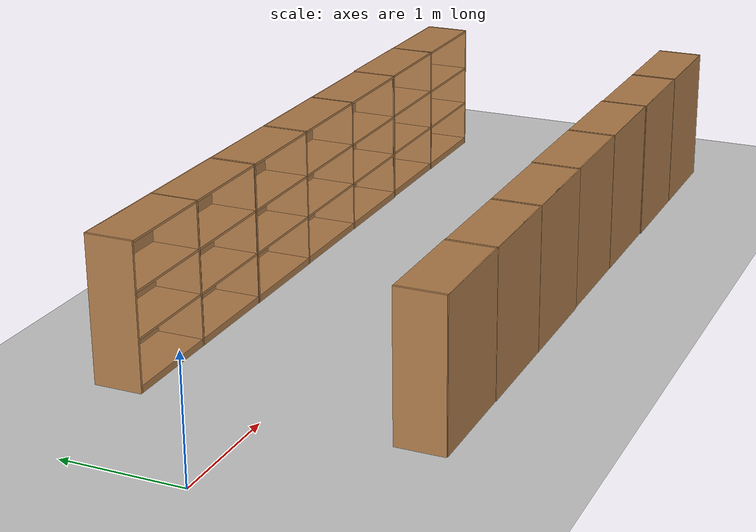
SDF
<sdf version="1.4">
 <world name="default">
  <light name="sun" type="directional">
   <pose>0 0 10 0 -0 0</pose>
   <diffuse>0.8 0.8 0.8 1</diffuse>
   <specular>0.2 0.2 0.2 1</specular>
   <attenuation>
    <range>1000</range>
    <constant>0.9</constant>
    <linear>0.01</linear>
    <quadratic>0.001</quadratic>
   </attenuation>
   <direction>-0.5 0.1 -0.9</direction>
  </light>
  <model name="ground_plane">
   <static>1</static>
   <link name="link">
    <collision name="collision">
     <geometry><plane><normal>0 0 1</normal><size>100 100</size></plane></geometry>
     <surface><friction><ode><mu>100</mu><mu2>50</mu2></ode></friction></surface>
    </collision>
    <visual name="visual">
     <cast_shadows>0</cast_shadows>
     <geometry><plane><normal>0 0 1</normal><size>100 100</size></plane></geometry>
     <material>
      <script><uri>file://media/materials/scripts/gazebo.material</uri><name>Gazebo/Grey</name></script>
     </material>
    </visual>
    <velocity_decay><linear>0</linear><angular>0</angular></velocity_decay>
   </link>
  </model>
  <physics type="ode">
   <max_step_size>0.001</max_step_size>
   <real_time_factor>1</real_time_factor>
   <real_time_update_rate>1000</real_time_update_rate>
   <gravity>0 0 -9.8</gravity>
  </physics>
  <scene><ambient>0.4 0.4 0.4 1</ambient><background>0.7 0.7 0.7 1</background><shadows>1</shadows></scene>
  <spherical_coordinates>
   <surface_model>EARTH_WGS84</surface_model>
   <latitude_deg>0</latitude_deg>
   <longitude_deg>0</longitude_deg>
   <elevation>0</elevation>
   <heading_deg>0</heading_deg>
  </spherical_coordinates>
  <model name="bookshelf">
   <static>1</static>
   <link name="link">
    <inertial><mass>1</mass></inertial>
    <collision name="back">
     <pose>0 0.005 0.6 0 -0 0</pose>
     <geometry><box><size>0.9 0.01 1.2</size></box></geometry>
    </collision>
    <visual name="visual1">
     <pose>0 0.005 0.6 0 -0 0</pose>
     <geometry><box><size>0.9 0.01 1.2</size></box></geometry>
     <material>
      <script><uri>file://media/materials/scripts/gazebo.material</uri><name>Gazebo/Wood</name></script>
     </material>
    </visual>
    <collision name="left_side">
     <pose>0.45 -0.195 0.6 0 -0 0</pose>
     <geometry><box><size>0.02 0.4 1.2</size></box></geometry>
    </collision>
    <visual name="visual2">
     <pose>0.45 -0.195 0.6 0 -0 0</pose>
     <geometry><box><size>0.02 0.4 1.2</size></box></geometry>
     <material>
      <script><uri>file://media/materials/scripts/gazebo.material</uri><name>Gazebo/Wood</name></script>
     </material>
    </visual>
    <collision name="right_side">
     <pose>-0.45 -0.195 0.6 0 -0 0</pose>
     <geometry><box><size>0.02 0.4 1.2</size></box></geometry>
    </collision>
    <visual name="visual3">
     <pose>-0.45 -0.195 0.6 0 -0 0</pose>
     <geometry><box><size>0.02 0.4 1.2</size></box></geometry>
     <material>
      <script><uri>file://media/materials/scripts/gazebo.material</uri><name>Gazebo/Wood</name></script>
     </material>
    </visual>
    <collision name="bottom">
     <pose>0 -0.195 0.03 0 -0 0</pose>
     <geometry><box><size>0.88 0.4 0.06</size></box></geometry>
    </collision>
    <visual name="visual4">
     <pose>0 -0.195 0.03 0 -0 0</pose>
     <geometry><box><size>0.88 0.4 0.06</size></box></geometry>
     <material>
      <script><uri>file://media/materials/scripts/gazebo.material</uri><name>Gazebo/Wood</name></script>
     </material>
    </visual>
    <collision name="top">
     <pose>0 -0.195 1.19 0 -0 0</pose>
     <geometry><box><size>0.88 0.4 0.02</size></box></geometry>
    </collision>
    <visual name="visual5">
     <pose>0 -0.195 1.19 0 -0 0</pose>
     <geometry><box><size>0.88 0.4 0.02</size></box></geometry>
     <material>
      <script><uri>file://media/materials/scripts/gazebo.material</uri><name>Gazebo/Wood</name></script>
     </material>
    </visual>
    <collision name="low_shelf">
     <pose>0 -0.195 0.43 0 -0 0</pose>
     <geometry><box><size>0.88 0.4 0.02</size></box></geometry>
    </collision>
    <visual name="visual6">
     <pose>0 -0.195 0.43 0 -0 0</pose>
     <geometry><box><size>0.88 0.4 0.02</size></box></geometry>
     <material>
      <script><uri>file://media/materials/scripts/gazebo.material</uri><name>Gazebo/Wood</name></script>
     </material>
    </visual>
    <collision name="high_shelf">
     <pose>0 -0.195 0.8 0 -0 0</pose>
     <geometry><box><size>0.88 0.4 0.02</size></box></geometry>
    </collision>
    <visual name="visual7">
     <pose>0 -0.195 0.8 0 -0 0</pose>
     <geometry><box><size>0.88 0.4 0.02</size></box></geometry>
     <material>
      <script><uri>file://media/materials/scripts/gazebo.material</uri><name>Gazebo/Wood</name></script>
     </material>
    </visual>
    <velocity_decay><linear>0</linear><angular>0</angular></velocity_decay>
   </link>
   <pose>1.51751 -1.39961 0 0 0 -3.14016</pose>
  </model>
  <model name="bookshelf_0">
   <static>1</static>
   <link name="link">
    <inertial><mass>1</mass></inertial>
    <collision name="back">
     <pose>0 0.005 0.6 0 -0 0</pose>
     <geometry><box><size>0.9 0.01 1.2</size></box></geometry>
    </collision>
    <visual name="visual1">
     <pose>0 0.005 0.6 0 -0 0</pose>
     <geometry><box><size>0.9 0.01 1.2</size></box></geometry>
     <material>
      <script><uri>file://media/materials/scripts/gazebo.material</uri><name>Gazebo/Wood</name></script>
     </material>
    </visual>
    <collision name="left_side">
     <pose>0.45 -0.195 0.6 0 -0 0</pose>
     <geometry><box><size>0.02 0.4 1.2</size></box></geometry>
    </collision>
    <visual name="visual2">
     <pose>0.45 -0.195 0.6 0 -0 0</pose>
     <geometry><box><size>0.02 0.4 1.2</size></box></geometry>
     <material>
      <script><uri>file://media/materials/scripts/gazebo.material</uri><name>Gazebo/Wood</name></script>
     </material>
    </visual>
    <collision name="right_side">
     <pose>-0.45 -0.195 0.6 0 -0 0</pose>
     <geometry><box><size>0.02 0.4 1.2</size></box></geometry>
    </collision>
    <visual name="visual3">
     <pose>-0.45 -0.195 0.6 0 -0 0</pose>
     <geometry><box><size>0.02 0.4 1.2</size></box></geometry>
     <material>
      <script><uri>file://media/materials/scripts/gazebo.material</uri><name>Gazebo/Wood</name></script>
     </material>
    </visual>
    <collision name="bottom">
     <pose>0 -0.195 0.03 0 -0 0</pose>
     <geometry><box><size>0.88 0.4 0.06</size></box></geometry>
    </collision>
    <visual name="visual4">
     <pose>0 -0.195 0.03 0 -0 0</pose>
     <geometry><box><size>0.88 0.4 0.06</size></box></geometry>
     <material>
      <script><uri>file://media/materials/scripts/gazebo.material</uri><name>Gazebo/Wood</name></script>
     </material>
    </visual>
    <collision name="top">
     <pose>0 -0.195 1.19 0 -0 0</pose>
     <geometry><box><size>0.88 0.4 0.02</size></box></geometry>
    </collision>
    <visual name="visual5">
     <pose>0 -0.195 1.19 0 -0 0</pose>
     <geometry><box><size>0.88 0.4 0.02</size></box></geometry>
     <material>
      <script><uri>file://media/materials/scripts/gazebo.material</uri><name>Gazebo/Wood</name></script>
     </material>
    </visual>
    <collision name="low_shelf">
     <pose>0 -0.195 0.43 0 -0 0</pose>
     <geometry><box><size>0.88 0.4 0.02</size></box></geometry>
    </collision>
    <visual name="visual6">
     <pose>0 -0.195 0.43 0 -0 0</pose>
     <geometry><box><size>0.88 0.4 0.02</size></box></geometry>
     <material>
      <script><uri>file://media/materials/scripts/gazebo.material</uri><name>Gazebo/Wood</name></script>
     </material>
    </visual>
    <collision name="high_shelf">
     <pose>0 -0.195 0.8 0 -0 0</pose>
     <geometry><box><size>0.88 0.4 0.02</size></box></geometry>
    </collision>
    <visual name="visual7">
     <pose>0 -0.195 0.8 0 -0 0</pose>
     <geometry><box><size>0.88 0.4 0.02</size></box></geometry>
     <material>
      <script><uri>file://media/materials/scripts/gazebo.material</uri><name>Gazebo/Wood</name></script>
     </material>
    </visual>
    <velocity_decay><linear>0</linear><angular>0</angular></velocity_decay>
   </link>
   <pose>1.52256 1.40238 0 0 -0 0</pose>
  </model>
  <model name="bookshelf_1">
   <static>1</static>
   <link name="link">
    <inertial><mass>1</mass></inertial>
    <collision name="back">
     <pose>0 0.005 0.6 0 -0 0</pose>
     <geometry><box><size>0.9 0.01 1.2</size></box></geometry>
    </collision>
    <visual name="visual1">
     <pose>0 0.005 0.6 0 -0 0</pose>
     <geometry><box><size>0.9 0.01 1.2</size></box></geometry>
     <material>
      <script><uri>file://media/materials/scripts/gazebo.material</uri><name>Gazebo/Wood</name></script>
     </material>
    </visual>
    <collision name="left_side">
     <pose>0.45 -0.195 0.6 0 -0 0</pose>
     <geometry><box><size>0.02 0.4 1.2</size></box></geometry>
    </collision>
    <visual name="visual2">
     <pose>0.45 -0.195 0.6 0 -0 0</pose>
     <geometry><box><size>0.02 0.4 1.2</size></box></geometry>
     <material>
      <script><uri>file://media/materials/scripts/gazebo.material</uri><name>Gazebo/Wood</name></script>
     </material>
    </visual>
    <collision name="right_side">
     <pose>-0.45 -0.195 0.6 0 -0 0</pose>
     <geometry><box><size>0.02 0.4 1.2</size></box></geometry>
    </collision>
    <visual name="visual3">
     <pose>-0.45 -0.195 0.6 0 -0 0</pose>
     <geometry><box><size>0.02 0.4 1.2</size></box></geometry>
     <material>
      <script><uri>file://media/materials/scripts/gazebo.material</uri><name>Gazebo/Wood</name></script>
     </material>
    </visual>
    <collision name="bottom">
     <pose>0 -0.195 0.03 0 -0 0</pose>
     <geometry><box><size>0.88 0.4 0.06</size></box></geometry>
    </collision>
    <visual name="visual4">
     <pose>0 -0.195 0.03 0 -0 0</pose>
     <geometry><box><size>0.88 0.4 0.06</size></box></geometry>
     <material>
      <script><uri>file://media/materials/scripts/gazebo.material</uri><name>Gazebo/Wood</name></script>
     </material>
    </visual>
    <collision name="top">
     <pose>0 -0.195 1.19 0 -0 0</pose>
     <geometry><box><size>0.88 0.4 0.02</size></box></geometry>
    </collision>
    <visual name="visual5">
     <pose>0 -0.195 1.19 0 -0 0</pose>
     <geometry><box><size>0.88 0.4 0.02</size></box></geometry>
     <material>
      <script><uri>file://media/materials/scripts/gazebo.material</uri><name>Gazebo/Wood</name></script>
     </material>
    </visual>
    <collision name="low_shelf">
     <pose>0 -0.195 0.43 0 -0 0</pose>
     <geometry><box><size>0.88 0.4 0.02</size></box></geometry>
    </collision>
    <visual name="visual6">
     <pose>0 -0.195 0.43 0 -0 0</pose>
     <geometry><box><size>0.88 0.4 0.02</size></box></geometry>
     <material>
      <script><uri>file://media/materials/scripts/gazebo.material</uri><name>Gazebo/Wood</name></script>
     </material>
    </visual>
    <collision name="high_shelf">
     <pose>0 -0.195 0.8 0 -0 0</pose>
     <geometry><box><size>0.88 0.4 0.02</size></box></geometry>
    </collision>
    <visual name="visual7">
     <pose>0 -0.195 0.8 0 -0 0</pose>
     <geometry><box><size>0.88 0.4 0.02</size></box></geometry>
     <material>
      <script><uri>file://media/materials/scripts/gazebo.material</uri><name>Gazebo/Wood</name></script>
     </material>
    </visual>
    <velocity_decay><linear>0</linear><angular>0</angular></velocity_decay>
   </link>
   <pose>2.41609 1.40118 0 0 -0 0</pose>
  </model>
  <model name="bookshelf_2">
   <static>1</static>
   <link name="link">
    <inertial><mass>1</mass></inertial>
    <collision name="back">
     <pose>0 0.005 0.6 0 -0 0</pose>
     <geometry><box><size>0.9 0.01 1.2</size></box></geometry>
    </collision>
    <visual name="visual1">
     <pose>0 0.005 0.6 0 -0 0</pose>
     <geometry><box><size>0.9 0.01 1.2</size></box></geometry>
     <material>
      <script><uri>file://media/materials/scripts/gazebo.material</uri><name>Gazebo/Wood</name></script>
     </material>
    </visual>
    <collision name="left_side">
     <pose>0.45 -0.195 0.6 0 -0 0</pose>
     <geometry><box><size>0.02 0.4 1.2</size></box></geometry>
    </collision>
    <visual name="visual2">
     <pose>0.45 -0.195 0.6 0 -0 0</pose>
     <geometry><box><size>0.02 0.4 1.2</size></box></geometry>
     <material>
      <script><uri>file://media/materials/scripts/gazebo.material</uri><name>Gazebo/Wood</name></script>
     </material>
    </visual>
    <collision name="right_side">
     <pose>-0.45 -0.195 0.6 0 -0 0</pose>
     <geometry><box><size>0.02 0.4 1.2</size></box></geometry>
    </collision>
    <visual name="visual3">
     <pose>-0.45 -0.195 0.6 0 -0 0</pose>
     <geometry><box><size>0.02 0.4 1.2</size></box></geometry>
     <material>
      <script><uri>file://media/materials/scripts/gazebo.material</uri><name>Gazebo/Wood</name></script>
     </material>
    </visual>
    <collision name="bottom">
     <pose>0 -0.195 0.03 0 -0 0</pose>
     <geometry><box><size>0.88 0.4 0.06</size></box></geometry>
    </collision>
    <visual name="visual4">
     <pose>0 -0.195 0.03 0 -0 0</pose>
     <geometry><box><size>0.88 0.4 0.06</size></box></geometry>
     <material>
      <script><uri>file://media/materials/scripts/gazebo.material</uri><name>Gazebo/Wood</name></script>
     </material>
    </visual>
    <collision name="top">
     <pose>0 -0.195 1.19 0 -0 0</pose>
     <geometry><box><size>0.88 0.4 0.02</size></box></geometry>
    </collision>
    <visual name="visual5">
     <pose>0 -0.195 1.19 0 -0 0</pose>
     <geometry><box><size>0.88 0.4 0.02</size></box></geometry>
     <material>
      <script><uri>file://media/materials/scripts/gazebo.material</uri><name>Gazebo/Wood</name></script>
     </material>
    </visual>
    <collision name="low_shelf">
     <pose>0 -0.195 0.43 0 -0 0</pose>
     <geometry><box><size>0.88 0.4 0.02</size></box></geometry>
    </collision>
    <visual name="visual6">
     <pose>0 -0.195 0.43 0 -0 0</pose>
     <geometry><box><size>0.88 0.4 0.02</size></box></geometry>
     <material>
      <script><uri>file://media/materials/scripts/gazebo.material</uri><name>Gazebo/Wood</name></script>
     </material>
    </visual>
    <collision name="high_shelf">
     <pose>0 -0.195 0.8 0 -0 0</pose>
     <geometry><box><size>0.88 0.4 0.02</size></box></geometry>
    </collision>
    <visual name="visual7">
     <pose>0 -0.195 0.8 0 -0 0</pose>
     <geometry><box><size>0.88 0.4 0.02</size></box></geometry>
     <material>
      <script><uri>file://media/materials/scripts/gazebo.material</uri><name>Gazebo/Wood</name></script>
     </material>
    </visual>
    <velocity_decay><linear>0</linear><angular>0</angular></velocity_decay>
   </link>
   <pose>2.42061 -1.40235 0 0 0 -3.14159</pose>
  </model>
  <model name="bookshelf_3">
   <static>1</static>
   <link name="link">
    <inertial><mass>1</mass></inertial>
    <collision name="back">
     <pose>0 0.005 0.6 0 -0 0</pose>
     <geometry><box><size>0.9 0.01 1.2</size></box></geometry>
    </collision>
    <visual name="visual1">
     <pose>0 0.005 0.6 0 -0 0</pose>
     <geometry><box><size>0.9 0.01 1.2</size></box></geometry>
     <material>
      <script><uri>file://media/materials/scripts/gazebo.material</uri><name>Gazebo/Wood</name></script>
     </material>
    </visual>
    <collision name="left_side">
     <pose>0.45 -0.195 0.6 0 -0 0</pose>
     <geometry><box><size>0.02 0.4 1.2</size></box></geometry>
    </collision>
    <visual name="visual2">
     <pose>0.45 -0.195 0.6 0 -0 0</pose>
     <geometry><box><size>0.02 0.4 1.2</size></box></geometry>
     <material>
      <script><uri>file://media/materials/scripts/gazebo.material</uri><name>Gazebo/Wood</name></script>
     </material>
    </visual>
    <collision name="right_side">
     <pose>-0.45 -0.195 0.6 0 -0 0</pose>
     <geometry><box><size>0.02 0.4 1.2</size></box></geometry>
    </collision>
    <visual name="visual3">
     <pose>-0.45 -0.195 0.6 0 -0 0</pose>
     <geometry><box><size>0.02 0.4 1.2</size></box></geometry>
     <material>
      <script><uri>file://media/materials/scripts/gazebo.material</uri><name>Gazebo/Wood</name></script>
     </material>
    </visual>
    <collision name="bottom">
     <pose>0 -0.195 0.03 0 -0 0</pose>
     <geometry><box><size>0.88 0.4 0.06</size></box></geometry>
    </collision>
    <visual name="visual4">
     <pose>0 -0.195 0.03 0 -0 0</pose>
     <geometry><box><size>0.88 0.4 0.06</size></box></geometry>
     <material>
      <script><uri>file://media/materials/scripts/gazebo.material</uri><name>Gazebo/Wood</name></script>
     </material>
    </visual>
    <collision name="top">
     <pose>0 -0.195 1.19 0 -0 0</pose>
     <geometry><box><size>0.88 0.4 0.02</size></box></geometry>
    </collision>
    <visual name="visual5">
     <pose>0 -0.195 1.19 0 -0 0</pose>
     <geometry><box><size>0.88 0.4 0.02</size></box></geometry>
     <material>
      <script><uri>file://media/materials/scripts/gazebo.material</uri><name>Gazebo/Wood</name></script>
     </material>
    </visual>
    <collision name="low_shelf">
     <pose>0 -0.195 0.43 0 -0 0</pose>
     <geometry><box><size>0.88 0.4 0.02</size></box></geometry>
    </collision>
    <visual name="visual6">
     <pose>0 -0.195 0.43 0 -0 0</pose>
     <geometry><box><size>0.88 0.4 0.02</size></box></geometry>
     <material>
      <script><uri>file://media/materials/scripts/gazebo.material</uri><name>Gazebo/Wood</name></script>
     </material>
    </visual>
    <collision name="high_shelf">
     <pose>0 -0.195 0.8 0 -0 0</pose>
     <geometry><box><size>0.88 0.4 0.02</size></box></geometry>
    </collision>
    <visual name="visual7">
     <pose>0 -0.195 0.8 0 -0 0</pose>
     <geometry><box><size>0.88 0.4 0.02</size></box></geometry>
     <material>
      <script><uri>file://media/materials/scripts/gazebo.material</uri><name>Gazebo/Wood</name></script>
     </material>
    </visual>
    <velocity_decay><linear>0</linear><angular>0</angular></velocity_decay>
   </link>
   <pose>3.32379 1.39912 0 0 -0 0</pose>
  </model>
  <model name="bookshelf_4">
   <static>1</static>
   <link name="link">
    <inertial><mass>1</mass></inertial>
    <collision name="back">
     <pose>0 0.005 0.6 0 -0 0</pose>
     <geometry><box><size>0.9 0.01 1.2</size></box></geometry>
    </collision>
    <visual name="visual1">
     <pose>0 0.005 0.6 0 -0 0</pose>
     <geometry><box><size>0.9 0.01 1.2</size></box></geometry>
     <material>
      <script><uri>file://media/materials/scripts/gazebo.material</uri><name>Gazebo/Wood</name></script>
     </material>
    </visual>
    <collision name="left_side">
     <pose>0.45 -0.195 0.6 0 -0 0</pose>
     <geometry><box><size>0.02 0.4 1.2</size></box></geometry>
    </collision>
    <visual name="visual2">
     <pose>0.45 -0.195 0.6 0 -0 0</pose>
     <geometry><box><size>0.02 0.4 1.2</size></box></geometry>
     <material>
      <script><uri>file://media/materials/scripts/gazebo.material</uri><name>Gazebo/Wood</name></script>
     </material>
    </visual>
    <collision name="right_side">
     <pose>-0.45 -0.195 0.6 0 -0 0</pose>
     <geometry><box><size>0.02 0.4 1.2</size></box></geometry>
    </collision>
    <visual name="visual3">
     <pose>-0.45 -0.195 0.6 0 -0 0</pose>
     <geometry><box><size>0.02 0.4 1.2</size></box></geometry>
     <material>
      <script><uri>file://media/materials/scripts/gazebo.material</uri><name>Gazebo/Wood</name></script>
     </material>
    </visual>
    <collision name="bottom">
     <pose>0 -0.195 0.03 0 -0 0</pose>
     <geometry><box><size>0.88 0.4 0.06</size></box></geometry>
    </collision>
    <visual name="visual4">
     <pose>0 -0.195 0.03 0 -0 0</pose>
     <geometry><box><size>0.88 0.4 0.06</size></box></geometry>
     <material>
      <script><uri>file://media/materials/scripts/gazebo.material</uri><name>Gazebo/Wood</name></script>
     </material>
    </visual>
    <collision name="top">
     <pose>0 -0.195 1.19 0 -0 0</pose>
     <geometry><box><size>0.88 0.4 0.02</size></box></geometry>
    </collision>
    <visual name="visual5">
     <pose>0 -0.195 1.19 0 -0 0</pose>
     <geometry><box><size>0.88 0.4 0.02</size></box></geometry>
     <material>
      <script><uri>file://media/materials/scripts/gazebo.material</uri><name>Gazebo/Wood</name></script>
     </material>
    </visual>
    <collision name="low_shelf">
     <pose>0 -0.195 0.43 0 -0 0</pose>
     <geometry><box><size>0.88 0.4 0.02</size></box></geometry>
    </collision>
    <visual name="visual6">
     <pose>0 -0.195 0.43 0 -0 0</pose>
     <geometry><box><size>0.88 0.4 0.02</size></box></geometry>
     <material>
      <script><uri>file://media/materials/scripts/gazebo.material</uri><name>Gazebo/Wood</name></script>
     </material>
    </visual>
    <collision name="high_shelf">
     <pose>0 -0.195 0.8 0 -0 0</pose>
     <geometry><box><size>0.88 0.4 0.02</size></box></geometry>
    </collision>
    <visual name="visual7">
     <pose>0 -0.195 0.8 0 -0 0</pose>
     <geometry><box><size>0.88 0.4 0.02</size></box></geometry>
     <material>
      <script><uri>file://media/materials/scripts/gazebo.material</uri><name>Gazebo/Wood</name></script>
     </material>
    </visual>
    <velocity_decay><linear>0</linear><angular>0</angular></velocity_decay>
   </link>
   <pose>4.22773 1.402 0 0 -0 0</pose>
  </model>
  <model name="bookshelf_5">
   <static>1</static>
   <link name="link">
    <inertial><mass>1</mass></inertial>
    <collision name="back">
     <pose>0 0.005 0.6 0 -0 0</pose>
     <geometry><box><size>0.9 0.01 1.2</size></box></geometry>
    </collision>
    <visual name="visual1">
     <pose>0 0.005 0.6 0 -0 0</pose>
     <geometry><box><size>0.9 0.01 1.2</size></box></geometry>
     <material>
      <script><uri>file://media/materials/scripts/gazebo.material</uri><name>Gazebo/Wood</name></script>
     </material>
    </visual>
    <collision name="left_side">
     <pose>0.45 -0.195 0.6 0 -0 0</pose>
     <geometry><box><size>0.02 0.4 1.2</size></box></geometry>
    </collision>
    <visual name="visual2">
     <pose>0.45 -0.195 0.6 0 -0 0</pose>
     <geometry><box><size>0.02 0.4 1.2</size></box></geometry>
     <material>
      <script><uri>file://media/materials/scripts/gazebo.material</uri><name>Gazebo/Wood</name></script>
     </material>
    </visual>
    <collision name="right_side">
     <pose>-0.45 -0.195 0.6 0 -0 0</pose>
     <geometry><box><size>0.02 0.4 1.2</size></box></geometry>
    </collision>
    <visual name="visual3">
     <pose>-0.45 -0.195 0.6 0 -0 0</pose>
     <geometry><box><size>0.02 0.4 1.2</size></box></geometry>
     <material>
      <script><uri>file://media/materials/scripts/gazebo.material</uri><name>Gazebo/Wood</name></script>
     </material>
    </visual>
    <collision name="bottom">
     <pose>0 -0.195 0.03 0 -0 0</pose>
     <geometry><box><size>0.88 0.4 0.06</size></box></geometry>
    </collision>
    <visual name="visual4">
     <pose>0 -0.195 0.03 0 -0 0</pose>
     <geometry><box><size>0.88 0.4 0.06</size></box></geometry>
     <material>
      <script><uri>file://media/materials/scripts/gazebo.material</uri><name>Gazebo/Wood</name></script>
     </material>
    </visual>
    <collision name="top">
     <pose>0 -0.195 1.19 0 -0 0</pose>
     <geometry><box><size>0.88 0.4 0.02</size></box></geometry>
    </collision>
    <visual name="visual5">
     <pose>0 -0.195 1.19 0 -0 0</pose>
     <geometry><box><size>0.88 0.4 0.02</size></box></geometry>
     <material>
      <script><uri>file://media/materials/scripts/gazebo.material</uri><name>Gazebo/Wood</name></script>
     </material>
    </visual>
    <collision name="low_shelf">
     <pose>0 -0.195 0.43 0 -0 0</pose>
     <geometry><box><size>0.88 0.4 0.02</size></box></geometry>
    </collision>
    <visual name="visual6">
     <pose>0 -0.195 0.43 0 -0 0</pose>
     <geometry><box><size>0.88 0.4 0.02</size></box></geometry>
     <material>
      <script><uri>file://media/materials/scripts/gazebo.material</uri><name>Gazebo/Wood</name></script>
     </material>
    </visual>
    <collision name="high_shelf">
     <pose>0 -0.195 0.8 0 -0 0</pose>
     <geometry><box><size>0.88 0.4 0.02</size></box></geometry>
    </collision>
    <visual name="visual7">
     <pose>0 -0.195 0.8 0 -0 0</pose>
     <geometry><box><size>0.88 0.4 0.02</size></box></geometry>
     <material>
      <script><uri>file://media/materials/scripts/gazebo.material</uri><name>Gazebo/Wood</name></script>
     </material>
    </visual>
    <velocity_decay><linear>0</linear><angular>0</angular></velocity_decay>
   </link>
   <pose>3.32726 -1.40237 0 0 0 -3.14159</pose>
  </model>
  <model name="bookshelf_6">
   <static>1</static>
   <link name="link">
    <inertial><mass>1</mass></inertial>
    <collision name="back">
     <pose>0 0.005 0.6 0 -0 0</pose>
     <geometry><box><size>0.9 0.01 1.2</size></box></geometry>
    </collision>
    <visual name="visual1">
     <pose>0 0.005 0.6 0 -0 0</pose>
     <geometry><box><size>0.9 0.01 1.2</size></box></geometry>
     <material>
      <script><uri>file://media/materials/scripts/gazebo.material</uri><name>Gazebo/Wood</name></script>
     </material>
    </visual>
    <collision name="left_side">
     <pose>0.45 -0.195 0.6 0 -0 0</pose>
     <geometry><box><size>0.02 0.4 1.2</size></box></geometry>
    </collision>
    <visual name="visual2">
     <pose>0.45 -0.195 0.6 0 -0 0</pose>
     <geometry><box><size>0.02 0.4 1.2</size></box></geometry>
     <material>
      <script><uri>file://media/materials/scripts/gazebo.material</uri><name>Gazebo/Wood</name></script>
     </material>
    </visual>
    <collision name="right_side">
     <pose>-0.45 -0.195 0.6 0 -0 0</pose>
     <geometry><box><size>0.02 0.4 1.2</size></box></geometry>
    </collision>
    <visual name="visual3">
     <pose>-0.45 -0.195 0.6 0 -0 0</pose>
     <geometry><box><size>0.02 0.4 1.2</size></box></geometry>
     <material>
      <script><uri>file://media/materials/scripts/gazebo.material</uri><name>Gazebo/Wood</name></script>
     </material>
    </visual>
    <collision name="bottom">
     <pose>0 -0.195 0.03 0 -0 0</pose>
     <geometry><box><size>0.88 0.4 0.06</size></box></geometry>
    </collision>
    <visual name="visual4">
     <pose>0 -0.195 0.03 0 -0 0</pose>
     <geometry><box><size>0.88 0.4 0.06</size></box></geometry>
     <material>
      <script><uri>file://media/materials/scripts/gazebo.material</uri><name>Gazebo/Wood</name></script>
     </material>
    </visual>
    <collision name="top">
     <pose>0 -0.195 1.19 0 -0 0</pose>
     <geometry><box><size>0.88 0.4 0.02</size></box></geometry>
    </collision>
    <visual name="visual5">
     <pose>0 -0.195 1.19 0 -0 0</pose>
     <geometry><box><size>0.88 0.4 0.02</size></box></geometry>
     <material>
      <script><uri>file://media/materials/scripts/gazebo.material</uri><name>Gazebo/Wood</name></script>
     </material>
    </visual>
    <collision name="low_shelf">
     <pose>0 -0.195 0.43 0 -0 0</pose>
     <geometry><box><size>0.88 0.4 0.02</size></box></geometry>
    </collision>
    <visual name="visual6">
     <pose>0 -0.195 0.43 0 -0 0</pose>
     <geometry><box><size>0.88 0.4 0.02</size></box></geometry>
     <material>
      <script><uri>file://media/materials/scripts/gazebo.material</uri><name>Gazebo/Wood</name></script>
     </material>
    </visual>
    <collision name="high_shelf">
     <pose>0 -0.195 0.8 0 -0 0</pose>
     <geometry><box><size>0.88 0.4 0.02</size></box></geometry>
    </collision>
    <visual name="visual7">
     <pose>0 -0.195 0.8 0 -0 0</pose>
     <geometry><box><size>0.88 0.4 0.02</size></box></geometry>
     <material>
      <script><uri>file://media/materials/scripts/gazebo.material</uri><name>Gazebo/Wood</name></script>
     </material>
    </visual>
    <velocity_decay><linear>0</linear><angular>0</angular></velocity_decay>
   </link>
   <pose>4.23388 -1.39609 0 0 0 -3.14159</pose>
  </model>
  <model name="bookshelf_7">
   <static>1</static>
   <link name="link">
    <inertial><mass>1</mass></inertial>
    <collision name="back">
     <pose>0 0.005 0.6 0 -0 0</pose>
     <geometry><box><size>0.9 0.01 1.2</size></box></geometry>
    </collision>
    <visual name="visual1">
     <pose>0 0.005 0.6 0 -0 0</pose>
     <geometry><box><size>0.9 0.01 1.2</size></box></geometry>
     <material>
      <script><uri>file://media/materials/scripts/gazebo.material</uri><name>Gazebo/Wood</name></script>
     </material>
    </visual>
    <collision name="left_side">
     <pose>0.45 -0.195 0.6 0 -0 0</pose>
     <geometry><box><size>0.02 0.4 1.2</size></box></geometry>
    </collision>
    <visual name="visual2">
     <pose>0.45 -0.195 0.6 0 -0 0</pose>
     <geometry><box><size>0.02 0.4 1.2</size></box></geometry>
     <material>
      <script><uri>file://media/materials/scripts/gazebo.material</uri><name>Gazebo/Wood</name></script>
     </material>
    </visual>
    <collision name="right_side">
     <pose>-0.45 -0.195 0.6 0 -0 0</pose>
     <geometry><box><size>0.02 0.4 1.2</size></box></geometry>
    </collision>
    <visual name="visual3">
     <pose>-0.45 -0.195 0.6 0 -0 0</pose>
     <geometry><box><size>0.02 0.4 1.2</size></box></geometry>
     <material>
      <script><uri>file://media/materials/scripts/gazebo.material</uri><name>Gazebo/Wood</name></script>
     </material>
    </visual>
    <collision name="bottom">
     <pose>0 -0.195 0.03 0 -0 0</pose>
     <geometry><box><size>0.88 0.4 0.06</size></box></geometry>
    </collision>
    <visual name="visual4">
     <pose>0 -0.195 0.03 0 -0 0</pose>
     <geometry><box><size>0.88 0.4 0.06</size></box></geometry>
     <material>
      <script><uri>file://media/materials/scripts/gazebo.material</uri><name>Gazebo/Wood</name></script>
     </material>
    </visual>
    <collision name="top">
     <pose>0 -0.195 1.19 0 -0 0</pose>
     <geometry><box><size>0.88 0.4 0.02</size></box></geometry>
    </collision>
    <visual name="visual5">
     <pose>0 -0.195 1.19 0 -0 0</pose>
     <geometry><box><size>0.88 0.4 0.02</size></box></geometry>
     <material>
      <script><uri>file://media/materials/scripts/gazebo.material</uri><name>Gazebo/Wood</name></script>
     </material>
    </visual>
    <collision name="low_shelf">
     <pose>0 -0.195 0.43 0 -0 0</pose>
     <geometry><box><size>0.88 0.4 0.02</size></box></geometry>
    </collision>
    <visual name="visual6">
     <pose>0 -0.195 0.43 0 -0 0</pose>
     <geometry><box><size>0.88 0.4 0.02</size></box></geometry>
     <material>
      <script><uri>file://media/materials/scripts/gazebo.material</uri><name>Gazebo/Wood</name></script>
     </material>
    </visual>
    <collision name="high_shelf">
     <pose>0 -0.195 0.8 0 -0 0</pose>
     <geometry><box><size>0.88 0.4 0.02</size></box></geometry>
    </collision>
    <visual name="visual7">
     <pose>0 -0.195 0.8 0 -0 0</pose>
     <geometry><box><size>0.88 0.4 0.02</size></box></geometry>
     <material>
      <script><uri>file://media/materials/scripts/gazebo.material</uri><name>Gazebo/Wood</name></script>
     </material>
    </visual>
    <velocity_decay><linear>0</linear><angular>0</angular></velocity_decay>
   </link>
   <pose>5.12761 1.40099 0 0 -0 0</pose>
  </model>
  <model name="bookshelf_8">
   <static>1</static>
   <link name="link">
    <inertial><mass>1</mass></inertial>
    <collision name="back">
     <pose>0 0.005 0.6 0 -0 0</pose>
     <geometry><box><size>0.9 0.01 1.2</size></box></geometry>
    </collision>
    <visual name="visual1">
     <pose>0 0.005 0.6 0 -0 0</pose>
     <geometry><box><size>0.9 0.01 1.2</size></box></geometry>
     <material>
      <script><uri>file://media/materials/scripts/gazebo.material</uri><name>Gazebo/Wood</name></script>
     </material>
    </visual>
    <collision name="left_side">
     <pose>0.45 -0.195 0.6 0 -0 0</pose>
     <geometry><box><size>0.02 0.4 1.2</size></box></geometry>
    </collision>
    <visual name="visual2">
     <pose>0.45 -0.195 0.6 0 -0 0</pose>
     <geometry><box><size>0.02 0.4 1.2</size></box></geometry>
     <material>
      <script><uri>file://media/materials/scripts/gazebo.material</uri><name>Gazebo/Wood</name></script>
     </material>
    </visual>
    <collision name="right_side">
     <pose>-0.45 -0.195 0.6 0 -0 0</pose>
     <geometry><box><size>0.02 0.4 1.2</size></box></geometry>
    </collision>
    <visual name="visual3">
     <pose>-0.45 -0.195 0.6 0 -0 0</pose>
     <geometry><box><size>0.02 0.4 1.2</size></box></geometry>
     <material>
      <script><uri>file://media/materials/scripts/gazebo.material</uri><name>Gazebo/Wood</name></script>
     </material>
    </visual>
    <collision name="bottom">
     <pose>0 -0.195 0.03 0 -0 0</pose>
     <geometry><box><size>0.88 0.4 0.06</size></box></geometry>
    </collision>
    <visual name="visual4">
     <pose>0 -0.195 0.03 0 -0 0</pose>
     <geometry><box><size>0.88 0.4 0.06</size></box></geometry>
     <material>
      <script><uri>file://media/materials/scripts/gazebo.material</uri><name>Gazebo/Wood</name></script>
     </material>
    </visual>
    <collision name="top">
     <pose>0 -0.195 1.19 0 -0 0</pose>
     <geometry><box><size>0.88 0.4 0.02</size></box></geometry>
    </collision>
    <visual name="visual5">
     <pose>0 -0.195 1.19 0 -0 0</pose>
     <geometry><box><size>0.88 0.4 0.02</size></box></geometry>
     <material>
      <script><uri>file://media/materials/scripts/gazebo.material</uri><name>Gazebo/Wood</name></script>
     </material>
    </visual>
    <collision name="low_shelf">
     <pose>0 -0.195 0.43 0 -0 0</pose>
     <geometry><box><size>0.88 0.4 0.02</size></box></geometry>
    </collision>
    <visual name="visual6">
     <pose>0 -0.195 0.43 0 -0 0</pose>
     <geometry><box><size>0.88 0.4 0.02</size></box></geometry>
     <material>
      <script><uri>file://media/materials/scripts/gazebo.material</uri><name>Gazebo/Wood</name></script>
     </material>
    </visual>
    <collision name="high_shelf">
     <pose>0 -0.195 0.8 0 -0 0</pose>
     <geometry><box><size>0.88 0.4 0.02</size></box></geometry>
    </collision>
    <visual name="visual7">
     <pose>0 -0.195 0.8 0 -0 0</pose>
     <geometry><box><size>0.88 0.4 0.02</size></box></geometry>
     <material>
      <script><uri>file://media/materials/scripts/gazebo.material</uri><name>Gazebo/Wood</name></script>
     </material>
    </visual>
    <velocity_decay><linear>0</linear><angular>0</angular></velocity_decay>
   </link>
   <pose>6.02463 1.41014 0 0 -0 0</pose>
  </model>
  <model name="bookshelf_9">
   <static>1</static>
   <link name="link">
    <inertial><mass>1</mass></inertial>
    <collision name="back">
     <pose>0 0.005 0.6 0 -0 0</pose>
     <geometry><box><size>0.9 0.01 1.2</size></box></geometry>
    </collision>
    <visual name="visual1">
     <pose>0 0.005 0.6 0 -0 0</pose>
     <geometry><box><size>0.9 0.01 1.2</size></box></geometry>
     <material>
      <script><uri>file://media/materials/scripts/gazebo.material</uri><name>Gazebo/Wood</name></script>
     </material>
    </visual>
    <collision name="left_side">
     <pose>0.45 -0.195 0.6 0 -0 0</pose>
     <geometry><box><size>0.02 0.4 1.2</size></box></geometry>
    </collision>
    <visual name="visual2">
     <pose>0.45 -0.195 0.6 0 -0 0</pose>
     <geometry><box><size>0.02 0.4 1.2</size></box></geometry>
     <material>
      <script><uri>file://media/materials/scripts/gazebo.material</uri><name>Gazebo/Wood</name></script>
     </material>
    </visual>
    <collision name="right_side">
     <pose>-0.45 -0.195 0.6 0 -0 0</pose>
     <geometry><box><size>0.02 0.4 1.2</size></box></geometry>
    </collision>
    <visual name="visual3">
     <pose>-0.45 -0.195 0.6 0 -0 0</pose>
     <geometry><box><size>0.02 0.4 1.2</size></box></geometry>
     <material>
      <script><uri>file://media/materials/scripts/gazebo.material</uri><name>Gazebo/Wood</name></script>
     </material>
    </visual>
    <collision name="bottom">
     <pose>0 -0.195 0.03 0 -0 0</pose>
     <geometry><box><size>0.88 0.4 0.06</size></box></geometry>
    </collision>
    <visual name="visual4">
     <pose>0 -0.195 0.03 0 -0 0</pose>
     <geometry><box><size>0.88 0.4 0.06</size></box></geometry>
     <material>
      <script><uri>file://media/materials/scripts/gazebo.material</uri><name>Gazebo/Wood</name></script>
     </material>
    </visual>
    <collision name="top">
     <pose>0 -0.195 1.19 0 -0 0</pose>
     <geometry><box><size>0.88 0.4 0.02</size></box></geometry>
    </collision>
    <visual name="visual5">
     <pose>0 -0.195 1.19 0 -0 0</pose>
     <geometry><box><size>0.88 0.4 0.02</size></box></geometry>
     <material>
      <script><uri>file://media/materials/scripts/gazebo.material</uri><name>Gazebo/Wood</name></script>
     </material>
    </visual>
    <collision name="low_shelf">
     <pose>0 -0.195 0.43 0 -0 0</pose>
     <geometry><box><size>0.88 0.4 0.02</size></box></geometry>
    </collision>
    <visual name="visual6">
     <pose>0 -0.195 0.43 0 -0 0</pose>
     <geometry><box><size>0.88 0.4 0.02</size></box></geometry>
     <material>
      <script><uri>file://media/materials/scripts/gazebo.material</uri><name>Gazebo/Wood</name></script>
     </material>
    </visual>
    <collision name="high_shelf">
     <pose>0 -0.195 0.8 0 -0 0</pose>
     <geometry><box><size>0.88 0.4 0.02</size></box></geometry>
    </collision>
    <visual name="visual7">
     <pose>0 -0.195 0.8 0 -0 0</pose>
     <geometry><box><size>0.88 0.4 0.02</size></box></geometry>
     <material>
      <script><uri>file://media/materials/scripts/gazebo.material</uri><name>Gazebo/Wood</name></script>
     </material>
    </visual>
    <velocity_decay><linear>0</linear><angular>0</angular></velocity_decay>
   </link>
   <pose>6.91735 1.40741 0 0 -0 0</pose>
  </model>
  <model name="bookshelf_10">
   <static>1</static>
   <link name="link">
    <inertial><mass>1</mass></inertial>
    <collision name="back">
     <pose>0 0.005 0.6 0 -0 0</pose>
     <geometry><box><size>0.9 0.01 1.2</size></box></geometry>
    </collision>
    <visual name="visual1">
     <pose>0 0.005 0.6 0 -0 0</pose>
     <geometry><box><size>0.9 0.01 1.2</size></box></geometry>
     <material>
      <script><uri>file://media/materials/scripts/gazebo.material</uri><name>Gazebo/Wood</name></script>
     </material>
    </visual>
    <collision name="left_side">
     <pose>0.45 -0.195 0.6 0 -0 0</pose>
     <geometry><box><size>0.02 0.4 1.2</size></box></geometry>
    </collision>
    <visual name="visual2">
     <pose>0.45 -0.195 0.6 0 -0 0</pose>
     <geometry><box><size>0.02 0.4 1.2</size></box></geometry>
     <material>
      <script><uri>file://media/materials/scripts/gazebo.material</uri><name>Gazebo/Wood</name></script>
     </material>
    </visual>
    <collision name="right_side">
     <pose>-0.45 -0.195 0.6 0 -0 0</pose>
     <geometry><box><size>0.02 0.4 1.2</size></box></geometry>
    </collision>
    <visual name="visual3">
     <pose>-0.45 -0.195 0.6 0 -0 0</pose>
     <geometry><box><size>0.02 0.4 1.2</size></box></geometry>
     <material>
      <script><uri>file://media/materials/scripts/gazebo.material</uri><name>Gazebo/Wood</name></script>
     </material>
    </visual>
    <collision name="bottom">
     <pose>0 -0.195 0.03 0 -0 0</pose>
     <geometry><box><size>0.88 0.4 0.06</size></box></geometry>
    </collision>
    <visual name="visual4">
     <pose>0 -0.195 0.03 0 -0 0</pose>
     <geometry><box><size>0.88 0.4 0.06</size></box></geometry>
     <material>
      <script><uri>file://media/materials/scripts/gazebo.material</uri><name>Gazebo/Wood</name></script>
     </material>
    </visual>
    <collision name="top">
     <pose>0 -0.195 1.19 0 -0 0</pose>
     <geometry><box><size>0.88 0.4 0.02</size></box></geometry>
    </collision>
    <visual name="visual5">
     <pose>0 -0.195 1.19 0 -0 0</pose>
     <geometry><box><size>0.88 0.4 0.02</size></box></geometry>
     <material>
      <script><uri>file://media/materials/scripts/gazebo.material</uri><name>Gazebo/Wood</name></script>
     </material>
    </visual>
    <collision name="low_shelf">
     <pose>0 -0.195 0.43 0 -0 0</pose>
     <geometry><box><size>0.88 0.4 0.02</size></box></geometry>
    </collision>
    <visual name="visual6">
     <pose>0 -0.195 0.43 0 -0 0</pose>
     <geometry><box><size>0.88 0.4 0.02</size></box></geometry>
     <material>
      <script><uri>file://media/materials/scripts/gazebo.material</uri><name>Gazebo/Wood</name></script>
     </material>
    </visual>
    <collision name="high_shelf">
     <pose>0 -0.195 0.8 0 -0 0</pose>
     <geometry><box><size>0.88 0.4 0.02</size></box></geometry>
    </collision>
    <visual name="visual7">
     <pose>0 -0.195 0.8 0 -0 0</pose>
     <geometry><box><size>0.88 0.4 0.02</size></box></geometry>
     <material>
      <script><uri>file://media/materials/scripts/gazebo.material</uri><name>Gazebo/Wood</name></script>
     </material>
    </visual>
    <velocity_decay><linear>0</linear><angular>0</angular></velocity_decay>
   </link>
   <pose>5.14029 -1.39802 0 0 -0 3.14159</pose>
  </model>
  <model name="bookshelf_11">
   <static>1</static>
   <link name="link">
    <inertial><mass>1</mass></inertial>
    <collision name="back">
     <pose>0 0.005 0.6 0 -0 0</pose>
     <geometry><box><size>0.9 0.01 1.2</size></box></geometry>
    </collision>
    <visual name="visual1">
     <pose>0 0.005 0.6 0 -0 0</pose>
     <geometry><box><size>0.9 0.01 1.2</size></box></geometry>
     <material>
      <script><uri>file://media/materials/scripts/gazebo.material</uri><name>Gazebo/Wood</name></script>
     </material>
    </visual>
    <collision name="left_side">
     <pose>0.45 -0.195 0.6 0 -0 0</pose>
     <geometry><box><size>0.02 0.4 1.2</size></box></geometry>
    </collision>
    <visual name="visual2">
     <pose>0.45 -0.195 0.6 0 -0 0</pose>
     <geometry><box><size>0.02 0.4 1.2</size></box></geometry>
     <material>
      <script><uri>file://media/materials/scripts/gazebo.material</uri><name>Gazebo/Wood</name></script>
     </material>
    </visual>
    <collision name="right_side">
     <pose>-0.45 -0.195 0.6 0 -0 0</pose>
     <geometry><box><size>0.02 0.4 1.2</size></box></geometry>
    </collision>
    <visual name="visual3">
     <pose>-0.45 -0.195 0.6 0 -0 0</pose>
     <geometry><box><size>0.02 0.4 1.2</size></box></geometry>
     <material>
      <script><uri>file://media/materials/scripts/gazebo.material</uri><name>Gazebo/Wood</name></script>
     </material>
    </visual>
    <collision name="bottom">
     <pose>0 -0.195 0.03 0 -0 0</pose>
     <geometry><box><size>0.88 0.4 0.06</size></box></geometry>
    </collision>
    <visual name="visual4">
     <pose>0 -0.195 0.03 0 -0 0</pose>
     <geometry><box><size>0.88 0.4 0.06</size></box></geometry>
     <material>
      <script><uri>file://media/materials/scripts/gazebo.material</uri><name>Gazebo/Wood</name></script>
     </material>
    </visual>
    <collision name="top">
     <pose>0 -0.195 1.19 0 -0 0</pose>
     <geometry><box><size>0.88 0.4 0.02</size></box></geometry>
    </collision>
    <visual name="visual5">
     <pose>0 -0.195 1.19 0 -0 0</pose>
     <geometry><box><size>0.88 0.4 0.02</size></box></geometry>
     <material>
      <script><uri>file://media/materials/scripts/gazebo.material</uri><name>Gazebo/Wood</name></script>
     </material>
    </visual>
    <collision name="low_shelf">
     <pose>0 -0.195 0.43 0 -0 0</pose>
     <geometry><box><size>0.88 0.4 0.02</size></box></geometry>
    </collision>
    <visual name="visual6">
     <pose>0 -0.195 0.43 0 -0 0</pose>
     <geometry><box><size>0.88 0.4 0.02</size></box></geometry>
     <material>
      <script><uri>file://media/materials/scripts/gazebo.material</uri><name>Gazebo/Wood</name></script>
     </material>
    </visual>
    <collision name="high_shelf">
     <pose>0 -0.195 0.8 0 -0 0</pose>
     <geometry><box><size>0.88 0.4 0.02</size></box></geometry>
    </collision>
    <visual name="visual7">
     <pose>0 -0.195 0.8 0 -0 0</pose>
     <geometry><box><size>0.88 0.4 0.02</size></box></geometry>
     <material>
      <script><uri>file://media/materials/scripts/gazebo.material</uri><name>Gazebo/Wood</name></script>
     </material>
    </visual>
    <velocity_decay><linear>0</linear><angular>0</angular></velocity_decay>
   </link>
   <pose>6.04238 -1.40632 0 0 0 -3.14159</pose>
  </model>
  <model name="bookshelf_12">
   <static>1</static>
   <link name="link">
    <inertial><mass>1</mass></inertial>
    <collision name="back">
     <pose>0 0.005 0.6 0 -0 0</pose>
     <geometry><box><size>0.9 0.01 1.2</size></box></geometry>
    </collision>
    <visual name="visual1">
     <pose>0 0.005 0.6 0 -0 0</pose>
     <geometry><box><size>0.9 0.01 1.2</size></box></geometry>
     <material>
      <script><uri>file://media/materials/scripts/gazebo.material</uri><name>Gazebo/Wood</name></script>
     </material>
    </visual>
    <collision name="left_side">
     <pose>0.45 -0.195 0.6 0 -0 0</pose>
     <geometry><box><size>0.02 0.4 1.2</size></box></geometry>
    </collision>
    <visual name="visual2">
     <pose>0.45 -0.195 0.6 0 -0 0</pose>
     <geometry><box><size>0.02 0.4 1.2</size></box></geometry>
     <material>
      <script><uri>file://media/materials/scripts/gazebo.material</uri><name>Gazebo/Wood</name></script>
     </material>
    </visual>
    <collision name="right_side">
     <pose>-0.45 -0.195 0.6 0 -0 0</pose>
     <geometry><box><size>0.02 0.4 1.2</size></box></geometry>
    </collision>
    <visual name="visual3">
     <pose>-0.45 -0.195 0.6 0 -0 0</pose>
     <geometry><box><size>0.02 0.4 1.2</size></box></geometry>
     <material>
      <script><uri>file://media/materials/scripts/gazebo.material</uri><name>Gazebo/Wood</name></script>
     </material>
    </visual>
    <collision name="bottom">
     <pose>0 -0.195 0.03 0 -0 0</pose>
     <geometry><box><size>0.88 0.4 0.06</size></box></geometry>
    </collision>
    <visual name="visual4">
     <pose>0 -0.195 0.03 0 -0 0</pose>
     <geometry><box><size>0.88 0.4 0.06</size></box></geometry>
     <material>
      <script><uri>file://media/materials/scripts/gazebo.material</uri><name>Gazebo/Wood</name></script>
     </material>
    </visual>
    <collision name="top">
     <pose>0 -0.195 1.19 0 -0 0</pose>
     <geometry><box><size>0.88 0.4 0.02</size></box></geometry>
    </collision>
    <visual name="visual5">
     <pose>0 -0.195 1.19 0 -0 0</pose>
     <geometry><box><size>0.88 0.4 0.02</size></box></geometry>
     <material>
      <script><uri>file://media/materials/scripts/gazebo.material</uri><name>Gazebo/Wood</name></script>
     </material>
    </visual>
    <collision name="low_shelf">
     <pose>0 -0.195 0.43 0 -0 0</pose>
     <geometry><box><size>0.88 0.4 0.02</size></box></geometry>
    </collision>
    <visual name="visual6">
     <pose>0 -0.195 0.43 0 -0 0</pose>
     <geometry><box><size>0.88 0.4 0.02</size></box></geometry>
     <material>
      <script><uri>file://media/materials/scripts/gazebo.material</uri><name>Gazebo/Wood</name></script>
     </material>
    </visual>
    <collision name="high_shelf">
     <pose>0 -0.195 0.8 0 -0 0</pose>
     <geometry><box><size>0.88 0.4 0.02</size></box></geometry>
    </collision>
    <visual name="visual7">
     <pose>0 -0.195 0.8 0 -0 0</pose>
     <geometry><box><size>0.88 0.4 0.02</size></box></geometry>
     <material>
      <script><uri>file://media/materials/scripts/gazebo.material</uri><name>Gazebo/Wood</name></script>
     </material>
    </visual>
    <velocity_decay><linear>0</linear><angular>0</angular></velocity_decay>
   </link>
   <pose>6.95557 -1.40674 0 0 0 -3.14159</pose>
  </model>
 </world>
</sdf>
